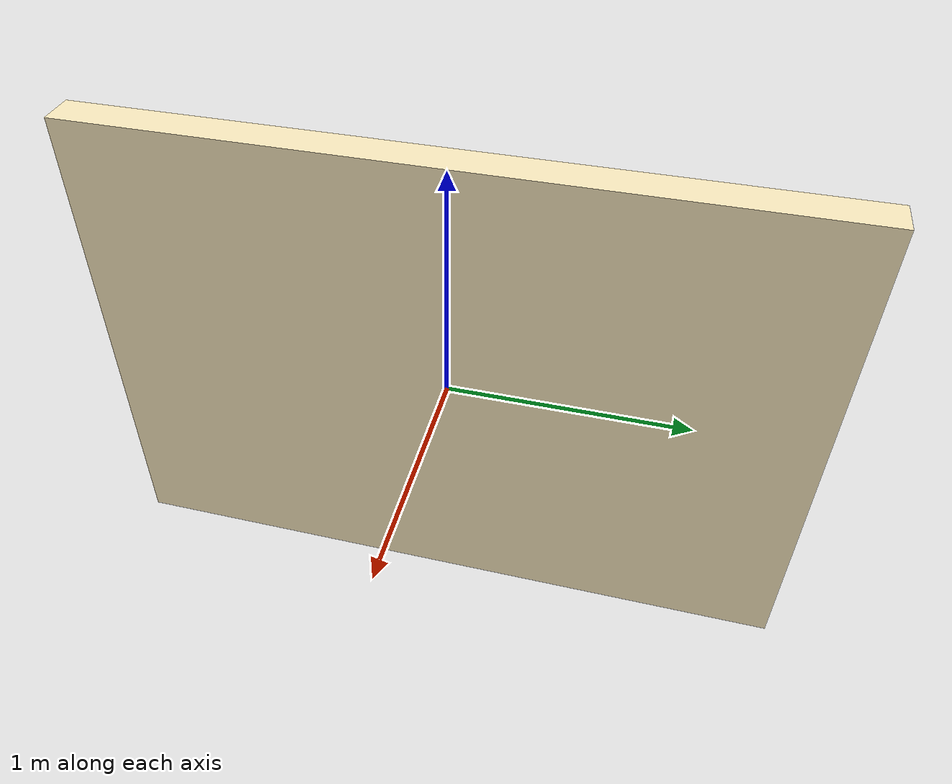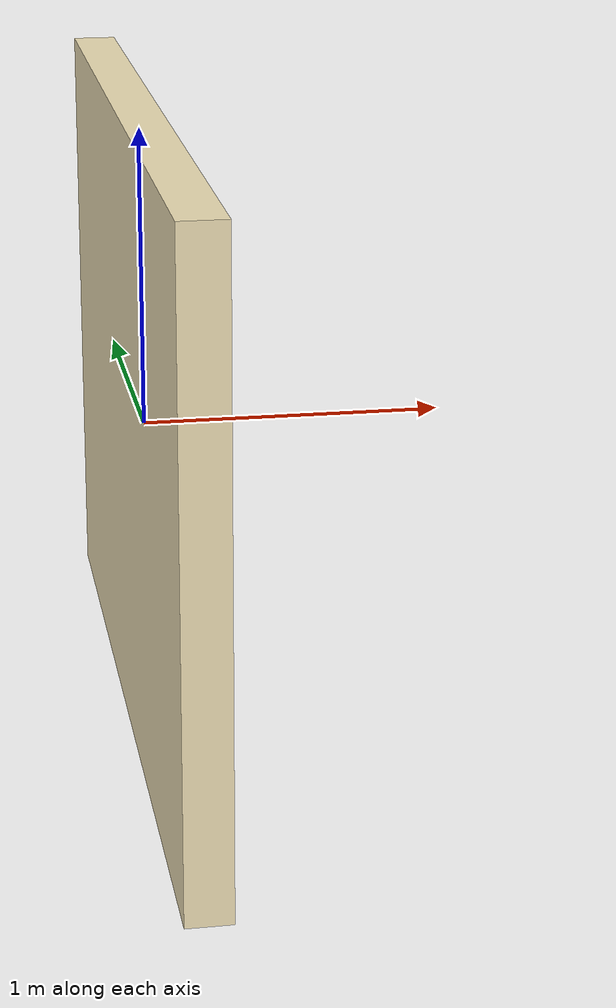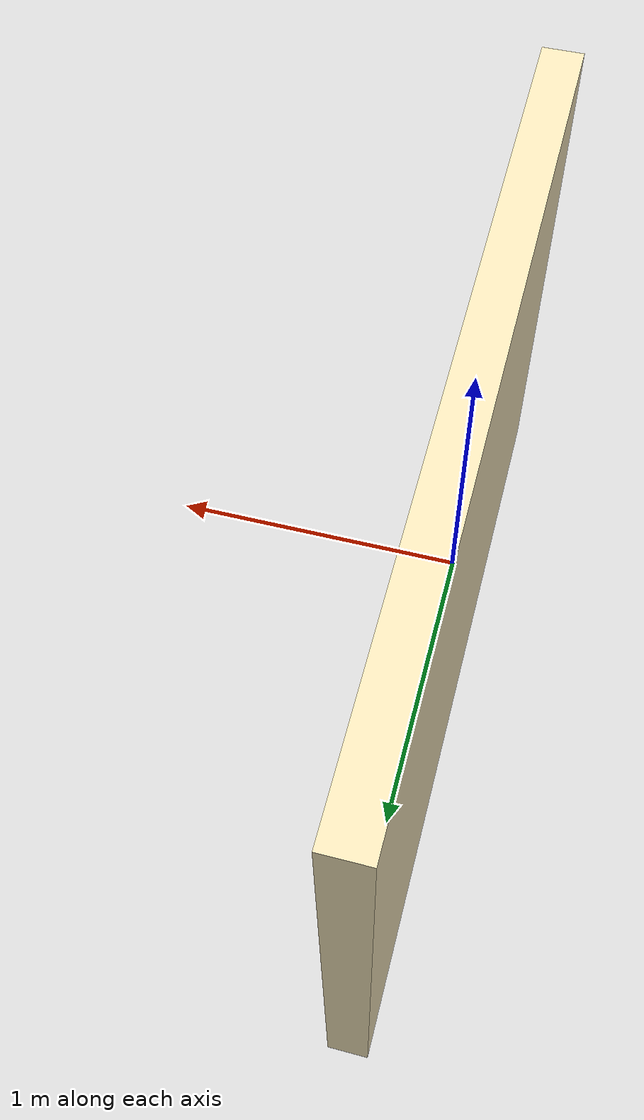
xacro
<?xml version="1.0"?>
<robot name="wall" xmlns:xacro="http://www.ros.org/wiki/xacro">

  <xacro:property name="width" value="0.150" />
  <xacro:property name="length" value="3" />
  <xacro:property name="height" value="2.1" />

 <xacro:macro name="box_inertial" params="x y z mass">
    <inertial>
      <mass value="${mass}" />
      <inertia ixx="${0.0833333 * mass * (y*y + z*z)}" ixy="0.0" ixz="0.0"
        iyy="${0.0833333 * mass * (x*x + z*z)}" iyz="0.0"
        izz="${0.0833333 * mass * (x*x + y*y)}" />
    </inertial>
  </xacro:macro>

  <link name="wall_1_link">

      <visual>
        <geometry>
          <box size="${width} ${length} ${height}"/>
        </geometry>
        <material name="ocher">
          <color rgba="0.949 0.890 0.722 1"/>
        </material>
      </visual>

      <collision>
        <geometry>
          <box size="${width} ${length} ${height}"/>
        </geometry>
      </collision>

  <xacro:box_inertial mass="1000" x="1" y="1" z="1"/>

    </link>

    <gazebo reference="wall_1_link">
      <material>Gazebo/White</material>
    </gazebo>

  <!-- Wall fixed to the world-->
    <link name="world"/>

    <joint name="base_link_fixed" type="fixed">
      <parent link="world"/>
      <child link="wall_1_link"/>
    </joint>

</robot>
